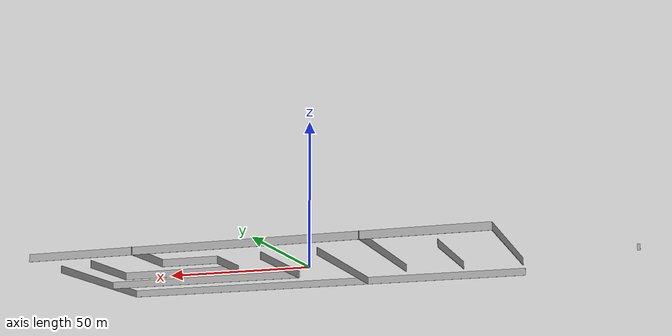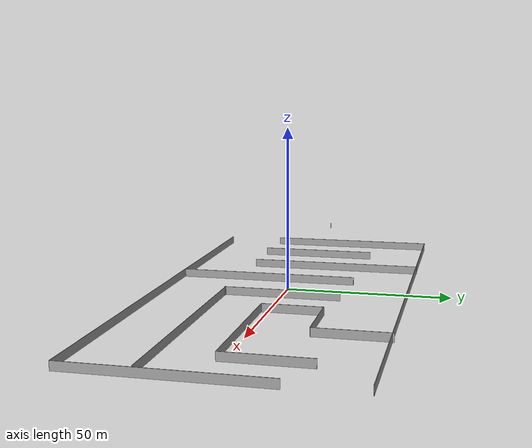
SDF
<?xml version='1.0'?>
<sdf version='1.7'>
  <model name='onepath_maze'>
    <pose>7.6252 0.437761 0 0 -0 0</pose>
    <link name='Door_0'>
      <collision name='Door_0_Collision'>
        <geometry>
          <box>
            <size>0.9 0.17 2</size>
          </box>
        </geometry>
        <pose>0 0 1 0 -0 0</pose>
      </collision>
      <visual name='Door_0_Visual'>
        <pose>0 0 1 0 -0 0</pose>
        <geometry>
          <box>
            <size>0.9 0.17 2</size>
          </box>
        </geometry>
        <material>
          <script>
            <uri>file://media/materials/scripts/gazebo.material</uri>
            <name>Gazebo/Grey</name>
          </script>
        </material>
      </visual>
      <pose>-112.127 -5.41118 0 0 -0 0</pose>
    </link>
    <link name='Wall_0'>
      <collision name='Wall_0_Collision'>
        <geometry>
          <box>
            <size>147.75 0.15 2.5</size>
          </box>
        </geometry>
        <pose>0 0 1.25 0 -0 0</pose>
      </collision>
      <visual name='Wall_0_Visual'>
        <pose>0 0 1.25 0 -0 0</pose>
        <geometry>
          <box>
            <size>147.75 0.15 2.5</size>
          </box>
        </geometry>
        <material>
          <script>
            <uri>file://media/materials/scripts/gazebo.material</uri>
            <name>Gazebo/Grey</name>
          </script>
          <ambient>1 1 1 1</ambient>
        </material>
        <meta>
          <layer>0</layer>
        </meta>
      </visual>
      <pose>1.06609 -37.229 0 0 -0 0</pose>
    </link>
    <link name='Wall_1'>
      <collision name='Wall_1_Collision'>
        <geometry>
          <box>
            <size>54 0.15 2.5</size>
          </box>
        </geometry>
        <pose>0 0 1.25 0 -0 0</pose>
      </collision>
      <visual name='Wall_1_Visual'>
        <pose>0 0 1.25 0 -0 0</pose>
        <geometry>
          <box>
            <size>54 0.15 2.5</size>
          </box>
        </geometry>
        <material>
          <script>
            <uri>file://media/materials/scripts/gazebo.material</uri>
            <name>Gazebo/Grey</name>
          </script>
          <ambient>1 1 1 1</ambient>
        </material>
        <meta>
          <layer>0</layer>
        </meta>
      </visual>
      <pose>74.8661 -10.304 0 0 -0 1.5708</pose>
    </link>
    <link name='Wall_10'>
      <collision name='Wall_10_Collision'>
        <geometry>
          <box>
            <size>70.75 0.15 2.5</size>
          </box>
        </geometry>
        <pose>0 0 1.25 0 -0 0</pose>
      </collision>
      <visual name='Wall_10_Visual'>
        <pose>0 0 1.25 0 -0 0</pose>
        <geometry>
          <box>
            <size>70.75 0.15 2.5</size>
          </box>
        </geometry>
        <material>
          <script>
            <uri>file://media/materials/scripts/gazebo.material</uri>
            <name>Gazebo/Grey</name>
          </script>
          <ambient>1 1 1 1</ambient>
        </material>
        <meta>
          <layer>0</layer>
        </meta>
      </visual>
      <pose>38.7175 -17.5322 0 0 -0 3.14159</pose>
    </link>
    <link name='Wall_12'>
      <collision name='Wall_12_Collision'>
        <geometry>
          <box>
            <size>55.75 0.15 2.5</size>
          </box>
        </geometry>
        <pose>0 0 1.25 0 -0 0</pose>
      </collision>
      <visual name='Wall_12_Visual'>
        <pose>0 0 1.25 0 -0 0</pose>
        <geometry>
          <box>
            <size>55.75 0.15 2.5</size>
          </box>
        </geometry>
        <material>
          <script>
            <uri>file://media/materials/scripts/gazebo.material</uri>
            <name>Gazebo/Grey</name>
          </script>
          <ambient>1 1 1 1</ambient>
        </material>
        <meta>
          <layer>0</layer>
        </meta>
      </visual>
      <pose>-16.8905 -9.21251 0 0 -0 1.5708</pose>
    </link>
    <link name='Wall_14'>
      <collision name='Wall_14_Collision'>
        <geometry>
          <box>
            <size>35.5 0.15 2.5</size>
          </box>
        </geometry>
        <pose>0 0 1.25 0 -0 0</pose>
      </collision>
      <visual name='Wall_14_Visual'>
        <pose>0 0 1.25 0 -0 0</pose>
        <geometry>
          <box>
            <size>35.5 0.15 2.5</size>
          </box>
        </geometry>
        <material>
          <script>
            <uri>file://media/materials/scripts/gazebo.material</uri>
            <name>Gazebo/Grey</name>
          </script>
          <ambient>1 1 1 1</ambient>
        </material>
        <meta>
          <layer>0</layer>
        </meta>
      </visual>
      <pose>2.37336 -0.07369 0 0 -0 1.5708</pose>
    </link>
    <link name='Wall_16'>
      <collision name='Wall_16_Collision'>
        <geometry>
          <box>
            <size>4.5 0.15 2.5</size>
          </box>
        </geometry>
        <pose>0 0 1.25 0 -0 0</pose>
      </collision>
      <visual name='Wall_16_Visual'>
        <pose>0 0 1.25 0 -0 0</pose>
        <geometry>
          <box>
            <size>4.5 0.15 2.5</size>
          </box>
        </geometry>
        <material>
          <script>
            <uri>file://media/materials/scripts/gazebo.material</uri>
            <name>Gazebo/Grey</name>
          </script>
          <ambient>1 1 1 1</ambient>
        </material>
        <meta>
          <layer>0</layer>
        </meta>
      </visual>
      <pose>4.11546 -17.5322 0 0 -0 0</pose>
    </link>
    <link name='Wall_18'>
      <collision name='Wall_18_Collision'>
        <geometry>
          <box>
            <size>21.75 0.15 2.5</size>
          </box>
        </geometry>
        <pose>0 0 1.25 0 -0 0</pose>
      </collision>
      <visual name='Wall_18_Visual'>
        <pose>0 0 1.25 0 -0 0</pose>
        <geometry>
          <box>
            <size>21.75 0.15 2.5</size>
          </box>
        </geometry>
        <material>
          <script>
            <uri>file://media/materials/scripts/gazebo.material</uri>
            <name>Gazebo/Grey</name>
          </script>
          <ambient>1 1 1 1</ambient>
        </material>
        <meta>
          <layer>0</layer>
        </meta>
      </visual>
      <pose>37.6543 26.429 0 0 -0 -1.5708</pose>
    </link>
    <link name='Wall_19'>
      <collision name='Wall_19_Collision'>
        <geometry>
          <box>
            <size>19.5 0.15 2.5</size>
          </box>
        </geometry>
        <pose>0 0 1.25 0 -0 0</pose>
      </collision>
      <visual name='Wall_19_Visual'>
        <pose>0 0 1.25 0 -0 0</pose>
        <geometry>
          <box>
            <size>19.5 0.15 2.5</size>
          </box>
        </geometry>
        <material>
          <script>
            <uri>file://media/materials/scripts/gazebo.material</uri>
            <name>Gazebo/Grey</name>
          </script>
          <ambient>1 1 1 1</ambient>
        </material>
        <meta>
          <layer>0</layer>
        </meta>
      </visual>
      <pose>27.9793 15.629 0 0 -0 3.14159</pose>
    </link>
    <link name='Wall_20'>
      <collision name='Wall_20_Collision'>
        <geometry>
          <box>
            <size>18 0.15 2.5</size>
          </box>
        </geometry>
        <pose>0 0 1.25 0 -0 0</pose>
      </collision>
      <visual name='Wall_20_Visual'>
        <pose>0 0 1.25 0 -0 0</pose>
        <geometry>
          <box>
            <size>18 0.15 2.5</size>
          </box>
        </geometry>
        <material>
          <script>
            <uri>file://media/materials/scripts/gazebo.material</uri>
            <name>Gazebo/Grey</name>
          </script>
          <ambient>1 1 1 1</ambient>
        </material>
        <meta>
          <layer>0</layer>
        </meta>
      </visual>
      <pose>18.3043 6.70396 0 0 -0 -1.5708</pose>
    </link>
    <link name='Wall_21'>
      <collision name='Wall_21_Collision'>
        <geometry>
          <box>
            <size>42.5 0.15 2.5</size>
          </box>
        </geometry>
        <pose>0 0 1.25 0 -0 0</pose>
      </collision>
      <visual name='Wall_21_Visual'>
        <pose>0 0 1.25 0 -0 0</pose>
        <geometry>
          <box>
            <size>42.5 0.15 2.5</size>
          </box>
        </geometry>
        <material>
          <script>
            <uri>file://media/materials/scripts/gazebo.material</uri>
            <name>Gazebo/Grey</name>
          </script>
          <ambient>1 1 1 1</ambient>
        </material>
        <meta>
          <layer>0</layer>
        </meta>
      </visual>
      <pose>39.4793 -2.22104 0 0 -0 0</pose>
    </link>
    <link name='Wall_22'>
      <collision name='Wall_22_Collision'>
        <geometry>
          <box>
            <size>24.25 0.15 2.5</size>
          </box>
        </geometry>
        <pose>0 0 1.25 0 -0 0</pose>
      </collision>
      <visual name='Wall_22_Visual'>
        <pose>0 0 1.25 0 -0 0</pose>
        <geometry>
          <box>
            <size>24.25 0.15 2.5</size>
          </box>
        </geometry>
        <material>
          <script>
            <uri>file://media/materials/scripts/gazebo.material</uri>
            <name>Gazebo/Grey</name>
          </script>
          <ambient>1 1 1 1</ambient>
        </material>
        <meta>
          <layer>0</layer>
        </meta>
      </visual>
      <pose>60.6543 9.82896 0 0 -0 1.5708</pose>
    </link>
    <link name='Wall_3'>
      <collision name='Wall_3_Collision'>
        <geometry>
          <box>
            <size>149.25 0.15 2.5</size>
          </box>
        </geometry>
        <pose>0 0 1.25 0 -0 0</pose>
      </collision>
      <visual name='Wall_3_Visual'>
        <pose>0 0 1.25 0 -0 0</pose>
        <geometry>
          <box>
            <size>149.25 0.15 2.5</size>
          </box>
        </geometry>
        <material>
          <script>
            <uri>file://media/materials/scripts/gazebo.material</uri>
            <name>Gazebo/Grey</name>
          </script>
          <ambient>1 1 1 1</ambient>
        </material>
        <meta>
          <layer>0</layer>
        </meta>
      </visual>
      <pose>-0.316087 36.7961 0 0 -0 3.14159</pose>
    </link>
    <link name='Wall_4'>
      <collision name='Wall_4_Collision'>
        <geometry>
          <box>
            <size>55.75 0.15 2.5</size>
          </box>
        </geometry>
        <pose>0 0 1.25 0 -0 0</pose>
      </collision>
      <visual name='Wall_4_Visual'>
        <pose>0 0 1.25 0 -0 0</pose>
        <geometry>
          <box>
            <size>55.75 0.15 2.5</size>
          </box>
        </geometry>
        <material>
          <script>
            <uri>file://media/materials/scripts/gazebo.material</uri>
            <name>Gazebo/Grey</name>
          </script>
          <ambient>1 1 1 1</ambient>
        </material>
        <meta>
          <layer>0</layer>
        </meta>
      </visual>
      <pose>-74.8661 8.99607 0 0 -0 -1.5708</pose>
    </link>
    <link name='Wall_6'>
      <collision name='Wall_6_Collision'>
        <geometry>
          <box>
            <size>38 0.15 2.5</size>
          </box>
        </geometry>
        <pose>0 0 1.25 0 -0 0</pose>
      </collision>
      <visual name='Wall_6_Visual'>
        <pose>0 0 1.25 0 -0 0</pose>
        <geometry>
          <box>
            <size>38 0.15 2.5</size>
          </box>
        </geometry>
        <material>
          <script>
            <uri>file://media/materials/scripts/gazebo.material</uri>
            <name>Gazebo/Grey</name>
          </script>
          <ambient>1 1 1 1</ambient>
        </material>
        <meta>
          <layer>0</layer>
        </meta>
      </visual>
      <pose>-55.2017 -0.09407 0 0 -0 -1.5708</pose>
    </link>
    <link name='Wall_8'>
      <collision name='Wall_8_Collision'>
        <geometry>
          <box>
            <size>55.25 0.15 2.5</size>
          </box>
        </geometry>
        <pose>0 0 1.25 0 -0 0</pose>
      </collision>
      <visual name='Wall_8_Visual'>
        <pose>0 0 1.25 0 -0 0</pose>
        <geometry>
          <box>
            <size>55.25 0.15 2.5</size>
          </box>
        </geometry>
        <material>
          <script>
            <uri>file://media/materials/scripts/gazebo.material</uri>
            <name>Gazebo/Grey</name>
          </script>
          <ambient>1 1 1 1</ambient>
        </material>
        <meta>
          <layer>0</layer>
        </meta>
      </visual>
      <pose>-35.9378 9.46252 0 0 -0 -1.5708</pose>
    </link>
    <static>1</static>
  </model>
</sdf>
